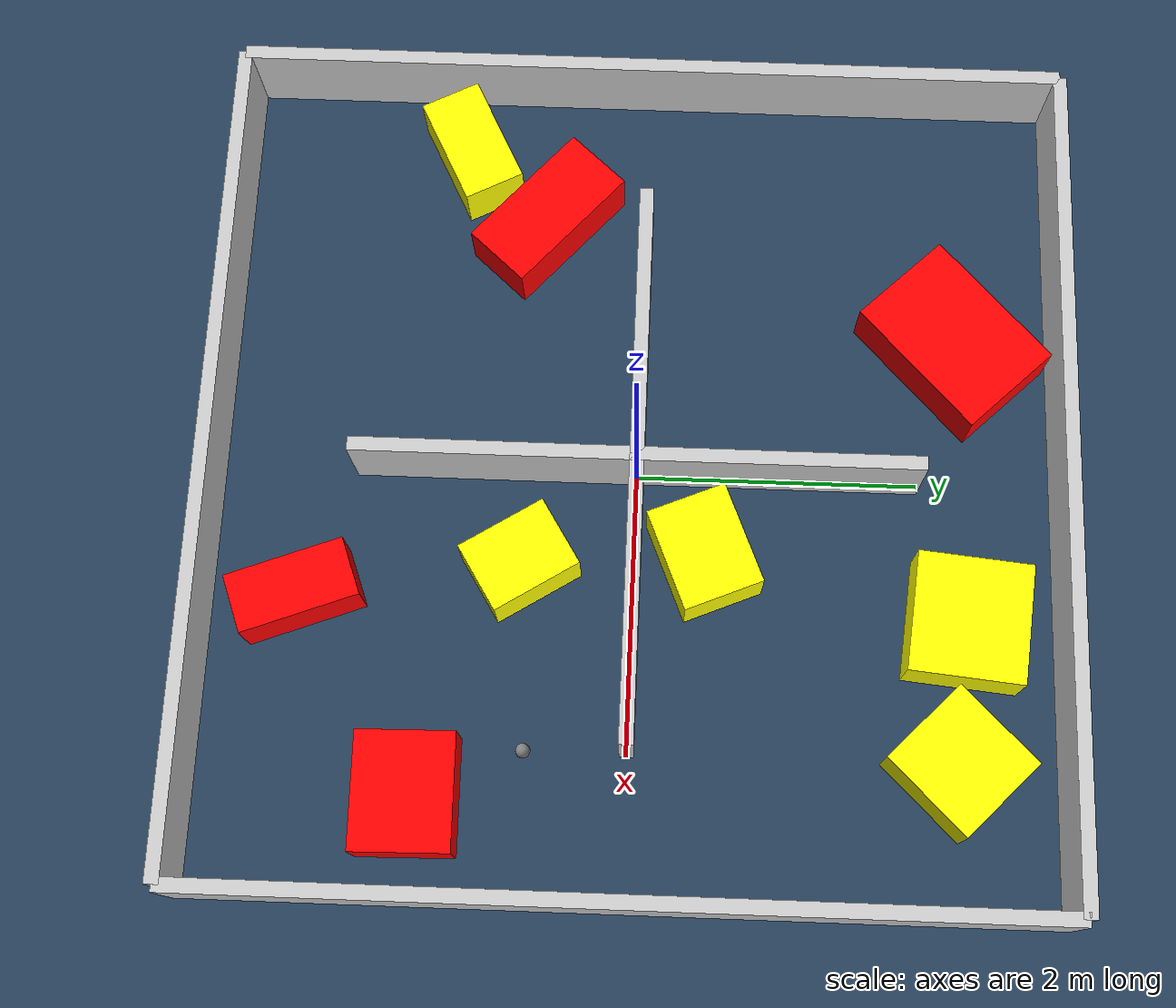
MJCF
<?xml version="1.0" ?>
<mujoco model="generated_environment">
  <option timestep="0.01" integrator="RK4" cone="elliptic"/>
  <default>
    <geom density="1"/>
  </default>
  <asset>
    <texture builtin="gradient" height="3072" rgb1="0.3 0.5 0.7" rgb2="0 0 0" type="skybox" width="512"/>
    <texture builtin="checker" height="300" mark="edge" markrgb="0.8 0.8 0.8" name="groundplane" rgb1="0.2 0.3 0.4" rgb2="0.1 0.2 0.3" type="2d" width="300"/>
    <material name="groundplane" reflectance="0.2" texrepeat="5 5" texture="groundplane" texuniform="true"/>
    <material name="robot" rgba="0.0 1.0 0.0 1"/>
  </asset>
  <worldbody>
    <light dir="0 0 -1" directional="true" pos="0 0 1.5"/>
    <geom condim="4" friction="1.0 0.005 0.001" material="groundplane" name="floor" size="0 0 0.05" type="plane"/>
    <body name="walls">
      <geom name="wall_1" condim="4" pos="-3.0 0.0 0.3" rgba="0.800000011920929 0.800000011920929 0.800000011920929 1.0" size="0.05 3.0 0.3" type="box"/>
      <geom name="wall_2" condim="4" pos="3.0 0.0 0.3" rgba="0.800000011920929 0.800000011920929 0.800000011920929 1.0" size="0.05 3.0 0.3" type="box"/>
      <geom name="wall_3" condim="4" pos="0.0 -3.0 0.3" rgba="0.800000011920929 0.800000011920929 0.800000011920929 1.0" size="3.0 0.05 0.3" type="box"/>
      <geom name="wall_4" condim="4" pos="0.0 3.0 0.3" rgba="0.800000011920929 0.800000011920929 0.800000011920929 1.0" size="3.0 0.05 0.3" type="box"/>
      <geom name="wall_5" condim="4" pos="1.0 0.0 0.3" rgba="0.800000011920929 0.800000011920929 0.800000011920929 1.0" size="1.0 0.05 0.3" type="box"/>
      <geom name="wall_6" condim="4" pos="-1.0 0.0 0.3" rgba="0.800000011920929 0.800000011920929 0.800000011920929 1.0" size="1.0 0.05 0.3" type="box"/>
      <geom name="wall_7" condim="4" pos="0.0 -1.0 0.3" rgba="0.800000011920929 0.800000011920929 0.800000011920929 1.0" size="0.05 1.0 0.3" type="box"/>
      <geom name="wall_8" condim="4" pos="0.0 1.0 0.3" rgba="0.800000011920929 0.800000011920929 0.800000011920929 1.0" size="0.05 1.0 0.3" type="box"/>
    </body>
    <body name="robot">
      <joint name="joint_x" type="slide" pos="0 0 0" axis="1 0 0"/>
      <joint name="joint_y" type="slide" pos="0 0 0" axis="0 1 0"/>
      <geom name="robot" type="sphere" pos="2.0084522352944636 -0.6986279337539179 0.2" size="0.05" mass="5." friction="1.0 0.005 0.0001" condim="4"/>
      <site name="sensor_ball"/>
    </body>
    <body name="obstacle_1_movable">
      <geom name="obstacle_1_movable" condim="4" pos="0.5890455112932838 0.49069140534985367 0.2" euler="0 0 292.60625171394094" friction="1.0 0.005 0.001" rgba="1 1 0 1" size="0.2914807074804326 0.37117880497143974 0.2" type="box" mass="0.1"/>
      <joint type="free"/>
    </body>
    <body name="obstacle_2_movable">
      <geom name="obstacle_2_movable" condim="4" pos="1.9907992164550503 2.2469382131691233 0.2" euler="0 0 45.62833207818215" friction="1.0 0.005 0.001" rgba="1 1 0 1" size="0.36744673583930043 0.35532507948228564 0.2" type="box" mass="0.1"/>
      <joint type="free"/>
    </body>
    <body name="obstacle_3_static">
      <geom name="obstacle_3_static" condim="4" pos="-1.0409616454135804 2.2375242803032167 0.2" euler="0 0 223.49827687376495" friction="1.0 0.005 0.001" rgba="1 0 0 1" size="0.5705051566033035 0.39864466635889556 0.2" type="box"/>
    </body>
    <body name="obstacle_4_movable">
      <geom name="obstacle_4_movable" condim="4" pos="1.0189504548814576 2.318236149278834 0.2" euler="0 0 264.3542334249093" friction="1.0 0.005 0.001" rgba="1 1 0 1" size="0.40245951616293446 0.42032684432622797 0.2" type="box" mass="0.1"/>
      <joint type="free"/>
    </body>
    <body name="obstacle_5_static">
      <geom name="obstacle_5_static" condim="4" pos="-1.9197760946597981 -0.719642918803955 0.2" euler="0 0 138.4653511944795" friction="1.0 0.005 0.001" rgba="1 0 0 1" size="0.5348767753384893 0.26045594832212104 0.2" type="box"/>
    </body>
    <body name="obstacle_6_static">
      <geom name="obstacle_6_static" condim="4" pos="2.326702656789964 -1.4690789893126641 0.2" euler="0 0 270.9246668468408" friction="1.0 0.005 0.001" rgba="1 0 0 1" size="0.342191438784908 0.40170376905197247 0.2" type="box"/>
    </body>
    <body name="obstacle_7_static">
      <geom name="obstacle_7_static" condim="4" pos="0.9646627213863237 -2.331998625483511 0.2" euler="0 0 110.75771664441095" friction="1.0 0.005 0.001" rgba="1 0 0 1" size="0.42526235859533856 0.21131287426729203 0.2" type="box"/>
    </body>
    <body name="obstacle_8_movable">
      <geom name="obstacle_8_movable" condim="4" pos="0.6935338920865974 -0.7886801681637219 0.2" euler="0 0 302.16025822461853" friction="1.0 0.005 0.001" rgba="1 1 0 1" size="0.3356526563454417 0.2621494828544647 0.2" type="box" mass="0.1"/>
      <joint type="free"/>
    </body>
    <body name="obstacle_9_movable">
      <geom name="obstacle_9_movable" condim="4" pos="-2.443312049817606 -1.3082823116955282 0.2" euler="0 0 207.30246693048343" friction="1.0 0.005 0.001" rgba="1 1 0 1" size="0.41076446884223305 0.22358842592187853 0.2" type="box" mass="0.1"/>
      <joint type="free"/>
    </body>
  </worldbody>
  <actuator>
    <motor name="actuator_x" joint="joint_x" gear="1" ctrlrange="-1 1"/>
    <motor name="actuator_y" joint="joint_y" gear="1" ctrlrange="-1 1"/>
  </actuator>
</mujoco>
